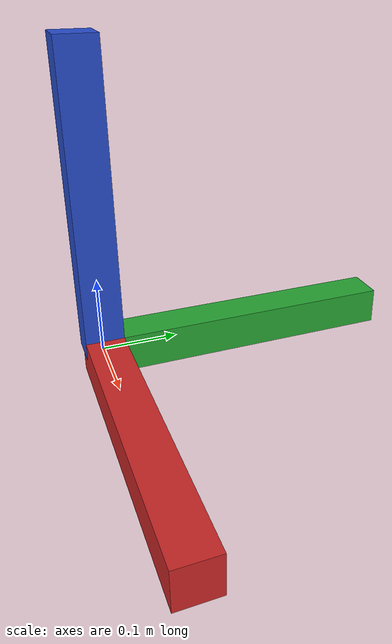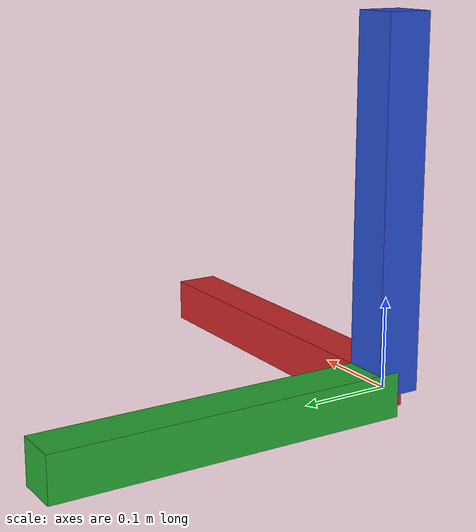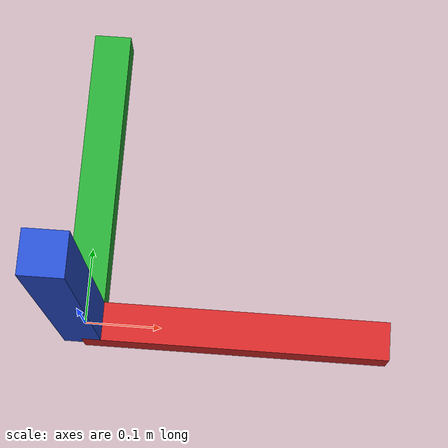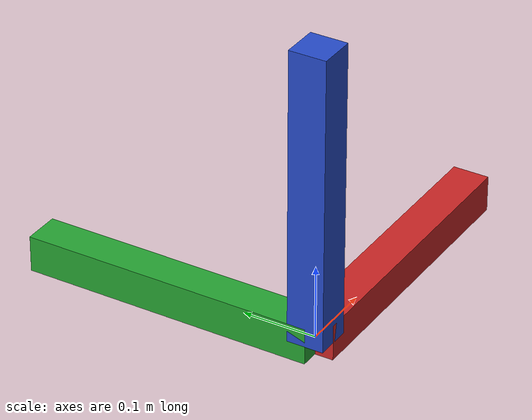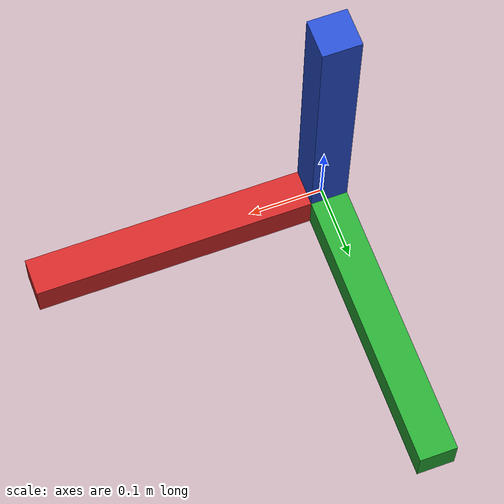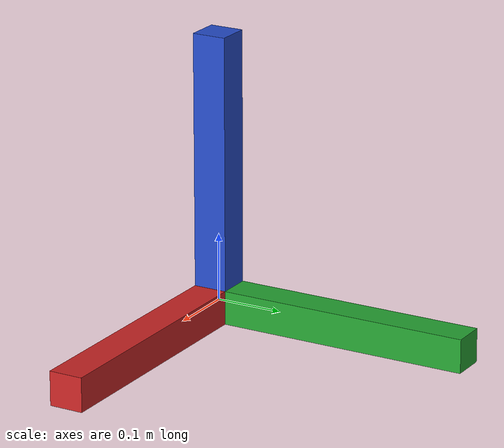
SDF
<?xml version="1.0" ?>
<sdf version="1.6">
  <model name="arrow_red">
    <pose>0 0 0 0 0 0</pose>
    <static>true</static>
    <link name="link">
      <visual name="visual">
        <pose>0.2 0 0 0 0 0</pose>
        <geometry>
          <box><size>0.4 0.05 0.05</size></box>
        </geometry>
        <material>
          <script>
            <uri>file://media/materials/scripts/gazebo.material</uri>
            <name>Gazebo/Red</name>
          </script>
        </material>
      </visual>
      <visual name="visual1">
        <pose>0 0.2 0 0 0 0</pose>
        <geometry>
          <box><size>0.05 0.4 0.05</size></box>
        </geometry>
        <material>
          <script>
            <uri>file://media/materials/scripts/gazebo.material</uri>
            <name>Gazebo/Green</name>
          </script>
        </material>
      </visual>
      <visual name="visual2">
        <pose>0 0 0.2 0 0 0</pose>
        <geometry>
          <box><size>0.05 0.05 0.4</size></box>
        </geometry>
        <material>
          <script>
            <uri>file://media/materials/scripts/gazebo.material</uri>
            <name>Gazebo/Blue</name>
          </script>
        </material>
      </visual>
    </link>
  </model>
</sdf>
